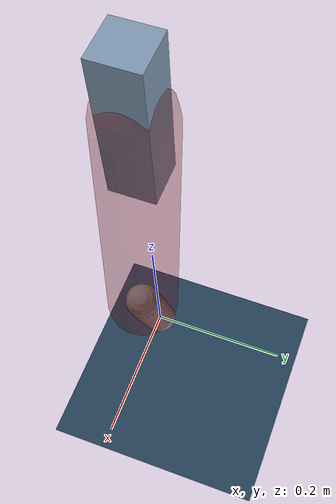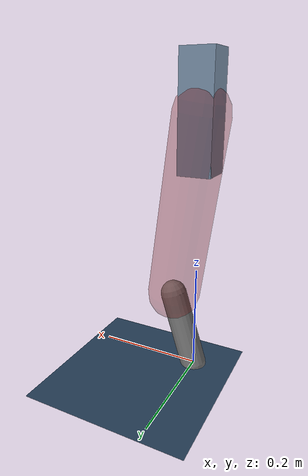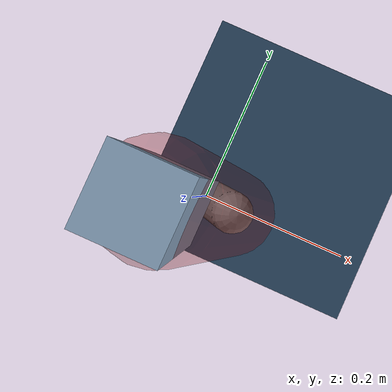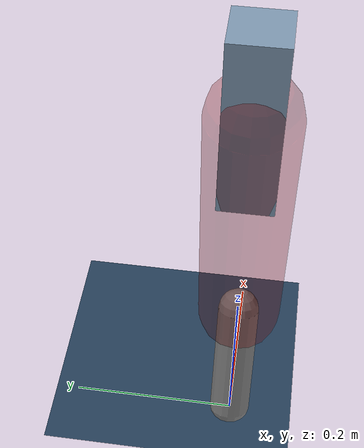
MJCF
<mujoco model="Hopper2D">
	<compiler inertiafromgeom="true" angle="radian" />
	<option timestep="0.001" integrator="implicit" cone="elliptic" solver="Newton" tolerance="1e-10" />

	<default>
		<geom contype="1" conaffinity="1" condim="3" friction="2 0.005 0.0001" solref="0.005 1" />
		<joint limited="true" damping="0.1" />
	</default>

	<asset>
		<texture name="skybox" type="skybox" builtin="gradient" rgb1=".4 .6 .8" rgb2="0 0 0" width="800" height="800" />
		<texture name="grid" type="2d" builtin="checker" rgb1=".1 .2 .3" rgb2=".2 .3 .4" width="300" height="300" mark="edge" markrgb=".2 .3 .4" />
		<material name="ground" texture="grid" texrepeat="1 1" texuniform="true" reflectance="0.1" />
		<material name="leg" rgba="0.5 0.6 0.7 1" />
	</asset>

	<worldbody>

		<geom name="floor" type="plane" size="5 5 0.25" material="ground" />

		<light directional="false" diffuse="0.8 0.8 0.8" specular="0.3 0.3 0.3" pos="0 0 2" dir="0 0 -1" />
		<light mode="targetbodycom" target="base" directional="false" diffuse="0.8 0.8 0.8" specular="0.3 0.3 0.3" pos="0 0 2" dir="0 0 -1" />

		<camera name="fixed" pos="0 -2 1" xyaxes="1 0 0 0 0 1" />
		<camera name="tracking" mode="trackcom" pos="0 -3 1" />

		<body name="root" pos="0 0 0.4796142852549048">
			<joint name="slide_x" type="slide" axis="1 0 0" range="-100 100" />
			<joint name="slide_z" type="slide" axis="0 0 1" range="0 10" />

			<body name="base" pos="0 0 0">
				<geom name="torso" type="box" size="0.03 0.03 0.1" mass="2.044" material="leg" />

				<body name="link1" pos="0 0 0" euler="0 1.436369932842433 0">
					<joint type="hinge" axis="0 -1 0" pos="0 0 0" name="hinge1" limited="true" range="-3.14 3.14" stiffness="0" damping="0.1" />
					<geom name="thigh" type="capsule" fromto="0 0 0 0.33825474911689496 0 0" size="0.05" rgba="0.5 0 0 0.3" mass="1.0938132975273058" />

					<body name="link2" pos="0.33825474911689496 0 0" euler="0 0.43860439208944724 0">
						<joint type="hinge" axis="0 -1 0" pos="0 0 0" name="hinge2" limited="true" range="-3.14 3.14" stiffness="0" damping="0.1" />
						<geom name="shank" type="capsule" fromto="0 0 0 0.15135953613800987 0 0" size="0.025" mass="0.35892358252420886" />

					</body>
				</body>
			</body>
		</body>
	</worldbody>

	<actuator>
		<motor name="torque1" joint="hinge1" ctrlrange="-86.28394209032771 86.28394209032771" ctrllimited="true" gear="1" />
		<motor name="torque2" joint="hinge2" ctrlrange="-60.91612091088105 60.91612091088105" ctrllimited="true" gear="1" />
	</actuator>
</mujoco>
